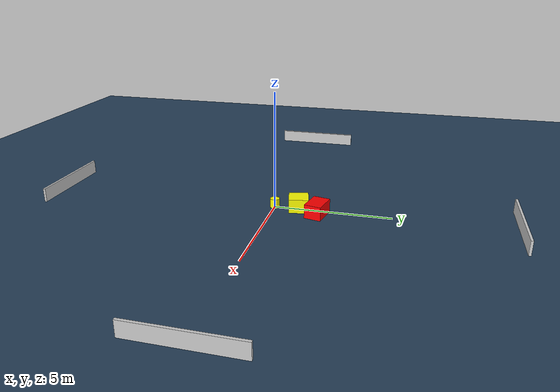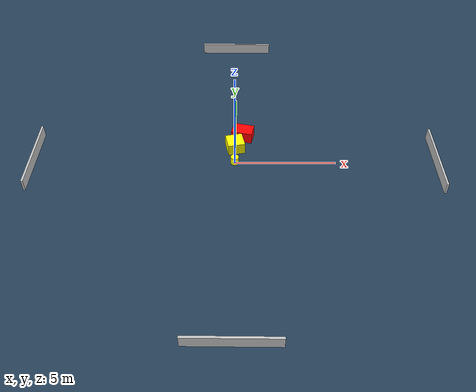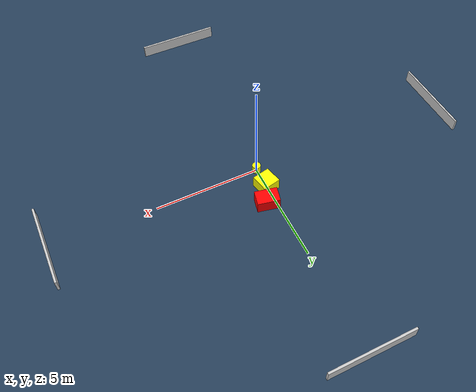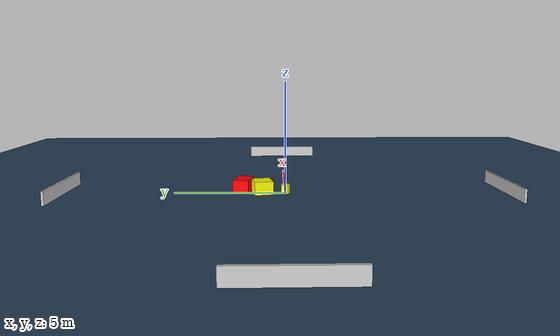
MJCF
<?xml version="1.0" ?>
<mujoco model="generated_environment">
  <option timestep="0.01" integrator="RK4" cone="elliptic"/>
  <default>
    <geom density="1"/>
  </default>
  <asset>
    <texture builtin="gradient" height="3072" name="skybox" rgb1="0.3 0.5 0.7" rgb2="0 0 0" type="skybox" width="512"/>
    <texture builtin="checker" height="300" name="groundplane" rgb1="0.2 0.3 0.4" rgb2="0.1 0.2 0.3" type="2d" width="300"/>
    <material name="groundplane" reflectance="0.2" texrepeat="5 5" texture="groundplane"/>
  </asset>
  <worldbody>
    <light dir="0 0 -1" directional="true" pos="0 0 1.5"/>
    <geom condim="3" friction="0.5 0.005 0.001" material="groundplane" name="floor" pos="0 0 0" size="0 0 0.05" type="plane"/>
    <body name="walls">
      <geom name="wall_1" condim="4" pos="-10.0 0.0 0.3" rgba="0.800000011920929 0.800000011920929 0.800000011920929 1.0" size="0.05 2.0 0.3" type="box"/>
      <geom name="wall_2" condim="4" pos="10.0 0.0 0.3" rgba="0.800000011920929 0.800000011920929 0.800000011920929 1.0" size="0.05 2.0 0.3" type="box"/>
      <geom name="wall_3" condim="4" pos="0.0 -10.0 0.3" rgba="0.800000011920929 0.800000011920929 0.800000011920929 1.0" size="2.0 0.05 0.3" type="box"/>
      <geom name="wall_4" condim="4" pos="0.0 10.0 0.3" rgba="0.800000011920929 0.800000011920929 0.800000011920929 1.0" size="2.0 0.05 0.3" type="box"/>
    </body>
    <body name="robot">
      <joint name="joint_x" type="slide" pos="0 0 0" axis="1 0 0"/>
      <joint name="joint_y" type="slide" pos="0 0 0" axis="0 1 0"/>
      <geom name="robot" type="cylinder" pos="0.0 0.0 0.2" size="0.2 0.2 0.0" mass="5.0" friction="1.0 0.005 0.0001" condim="4" rgba="1.0 1.0 0.0 1.0"/>
    </body>
    <body name="obstacle_1_movable">
      <geom name="obstacle_1_movable" condim="4" pos="0.012637004829353995 1.04670428151758 0.3" euler="0 0 282.20731285990496" friction="0.0 0.005 0.001" rgba="1.0 1.0 0.0 1.0" size="0.4190646133943014 0.42975926371614503 0.3" type="box" mass="0.1"/>
      <joint type="free"/>
    </body>
    <body name="obstacle_2_static">
      <geom name="obstacle_2_static" condim="4" pos="0.4029702087221409 1.9240585072691647 0.3" euler="0 0 167.6753358495818" friction="0.0 0.005 0.001" rgba="1.0 0.0 0.0 1.0" size="0.5298041875859747 0.35974816085709 0.3" type="box"/>
    </body>
  </worldbody>
  <actuator>
    <motor name="actuator_x" joint="joint_x" gear="1" ctrlrange="-1 1"/>
    <motor name="actuator_y" joint="joint_y" gear="1" ctrlrange="-1 1"/>
  </actuator>
</mujoco>
